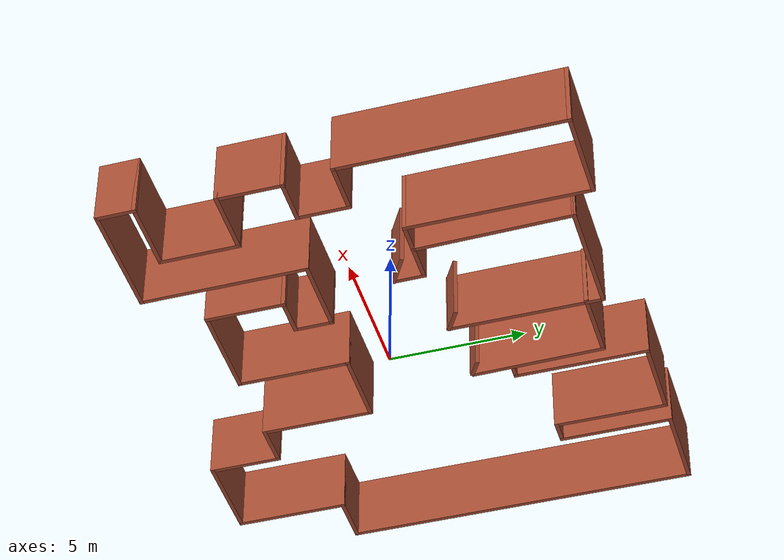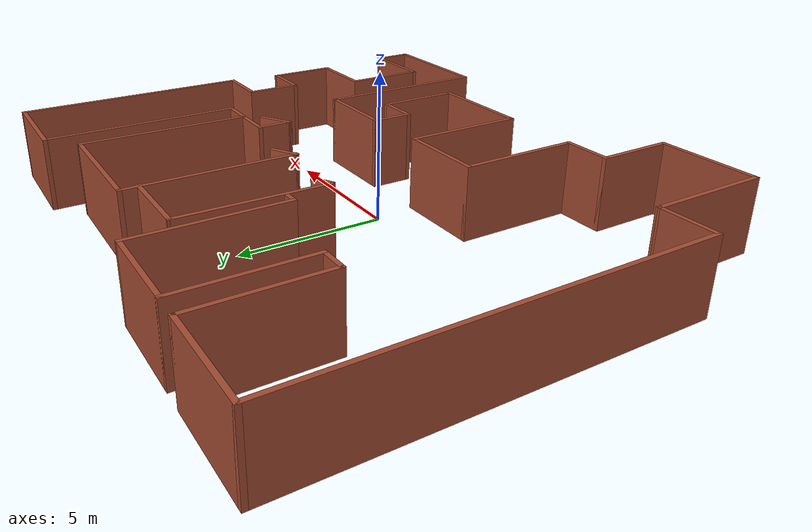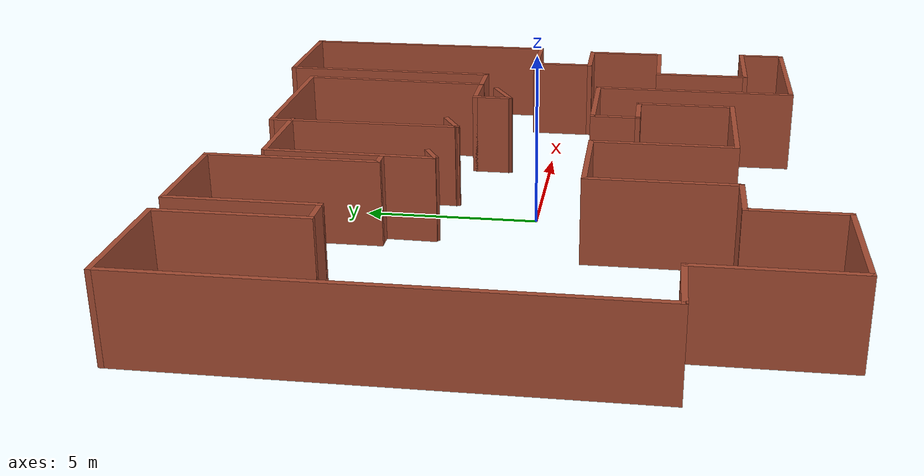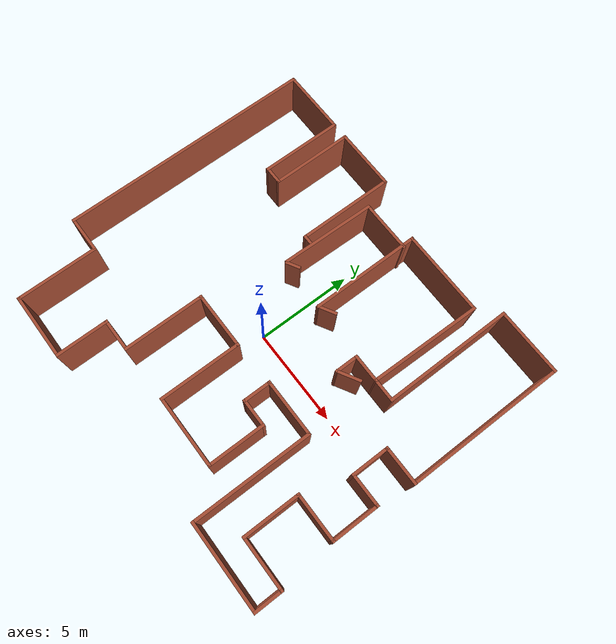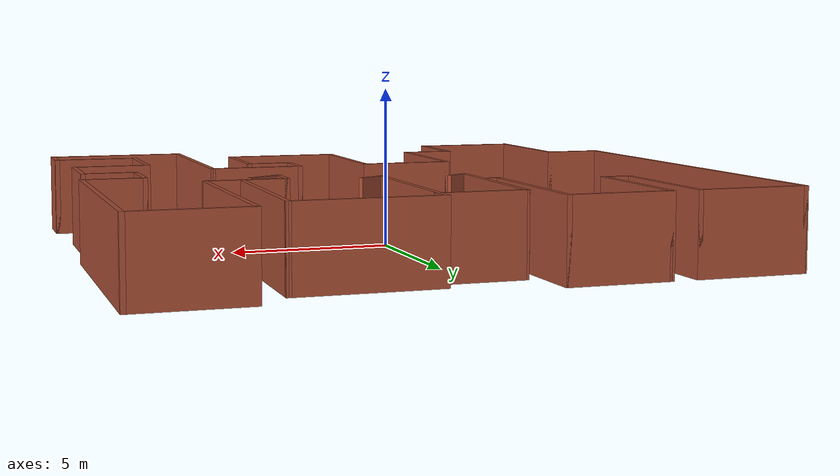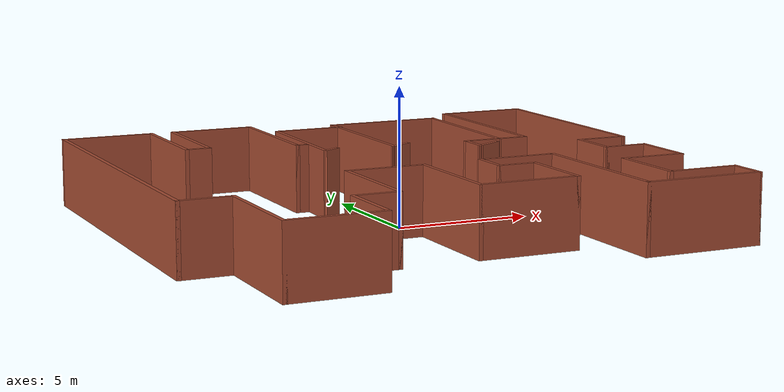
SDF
<?xml version='1.0'?>
<sdf version='1.6'>
  <model name='map_101'>
    <pose frame=''>0.107604 0.371153 0 0 -0 0</pose>
    <link name='Wall_16'>
      <collision name='Wall_16_Collision'>
        <geometry>
          <box>
            <size>13.25 0.15 2.5</size>
          </box>
        </geometry>
        <pose frame=''>0 0 1.25 0 -0 0</pose>
      </collision>
      <visual name='Wall_16_Visual'>
        <pose frame=''>0 0 1.25 0 -0 0</pose>
        <geometry>
          <box>
            <size>13.25 0.15 2.5</size>
          </box>
        </geometry>
        <material>
          <script>
            <uri>file://media/materials/scripts/gazebo.material</uri>
            <name>Gazebo/Bricks</name>
          </script>
          <ambient>1 1 1 1</ambient>
        </material>
        <meta>
          <layer>0</layer>
        </meta>
      </visual>
      <pose frame=''>-9.55 2.05 0 0 -0 -1.5708</pose>
    </link>
    <link name='Wall_17'>
      <collision name='Wall_17_Collision'>
        <geometry>
          <box>
            <size>2 0.15 2.5</size>
          </box>
        </geometry>
        <pose frame=''>0 0 1.25 0 -0 0</pose>
      </collision>
      <visual name='Wall_17_Visual'>
        <pose frame=''>0 0 1.25 0 -0 0</pose>
        <geometry>
          <box>
            <size>2 0.15 2.5</size>
          </box>
        </geometry>
        <material>
          <script>
            <uri>file://media/materials/scripts/gazebo.material</uri>
            <name>Gazebo/Bricks</name>
          </script>
          <ambient>1 1 1 1</ambient>
        </material>
        <meta>
          <layer>0</layer>
        </meta>
      </visual>
      <pose frame=''>-8.625 -4.5 0 0 -0 0</pose>
    </link>
    <link name='Wall_18'>
      <collision name='Wall_18_Collision'>
        <geometry>
          <box>
            <size>4.25 0.15 2.5</size>
          </box>
        </geometry>
        <pose frame=''>0 0 1.25 0 -0 0</pose>
      </collision>
      <visual name='Wall_18_Visual'>
        <pose frame=''>0 0 1.25 0 -0 0</pose>
        <geometry>
          <box>
            <size>4.25 0.15 2.5</size>
          </box>
        </geometry>
        <material>
          <script>
            <uri>file://media/materials/scripts/gazebo.material</uri>
            <name>Gazebo/Bricks</name>
          </script>
          <ambient>1 1 1 1</ambient>
        </material>
        <meta>
          <layer>0</layer>
        </meta>
      </visual>
      <pose frame=''>-7.7 -6.55 0 0 -0 -1.5708</pose>
    </link>
    <link name='Wall_19'>
      <collision name='Wall_19_Collision'>
        <geometry>
          <box>
            <size>3.5 0.15 2.5</size>
          </box>
        </geometry>
        <pose frame=''>0 0 1.25 0 -0 0</pose>
      </collision>
      <visual name='Wall_19_Visual'>
        <pose frame=''>0 0 1.25 0 -0 0</pose>
        <geometry>
          <box>
            <size>3.5 0.15 2.5</size>
          </box>
        </geometry>
        <material>
          <script>
            <uri>file://media/materials/scripts/gazebo.material</uri>
            <name>Gazebo/Bricks</name>
          </script>
          <ambient>1 1 1 1</ambient>
        </material>
        <meta>
          <layer>0</layer>
        </meta>
      </visual>
      <pose frame=''>-6.025 -8.6 0 0 -0 0</pose>
    </link>
    <link name='Wall_20'>
      <collision name='Wall_20_Collision'>
        <geometry>
          <box>
            <size>2.75 0.15 2.5</size>
          </box>
        </geometry>
        <pose frame=''>0 0 1.25 0 -0 0</pose>
      </collision>
      <visual name='Wall_20_Visual'>
        <pose frame=''>0 0 1.25 0 -0 0</pose>
        <geometry>
          <box>
            <size>2.75 0.15 2.5</size>
          </box>
        </geometry>
        <material>
          <script>
            <uri>file://media/materials/scripts/gazebo.material</uri>
            <name>Gazebo/Bricks</name>
          </script>
          <ambient>1 1 1 1</ambient>
        </material>
        <meta>
          <layer>0</layer>
        </meta>
      </visual>
      <pose frame=''>-4.35 -7.3 0 0 -0 1.5708</pose>
    </link>
    <link name='Wall_21'>
      <collision name='Wall_21_Collision'>
        <geometry>
          <box>
            <size>1.75 0.15 2.5</size>
          </box>
        </geometry>
        <pose frame=''>0 0 1.25 0 -0 0</pose>
      </collision>
      <visual name='Wall_21_Visual'>
        <pose frame=''>0 0 1.25 0 -0 0</pose>
        <geometry>
          <box>
            <size>1.75 0.15 2.5</size>
          </box>
        </geometry>
        <material>
          <script>
            <uri>file://media/materials/scripts/gazebo.material</uri>
            <name>Gazebo/Bricks</name>
          </script>
          <ambient>1 1 1 1</ambient>
        </material>
        <meta>
          <layer>0</layer>
        </meta>
      </visual>
      <pose frame=''>-3.55 -6 0 0 -0 0</pose>
    </link>
    <link name='Wall_22'>
      <collision name='Wall_22_Collision'>
        <geometry>
          <box>
            <size>4.25 0.15 2.5</size>
          </box>
        </geometry>
        <pose frame=''>0 0 1.25 0 -0 0</pose>
      </collision>
      <visual name='Wall_22_Visual'>
        <pose frame=''>0 0 1.25 0 -0 0</pose>
        <geometry>
          <box>
            <size>4.25 0.15 2.5</size>
          </box>
        </geometry>
        <material>
          <script>
            <uri>file://media/materials/scripts/gazebo.material</uri>
            <name>Gazebo/Bricks</name>
          </script>
          <ambient>1 1 1 1</ambient>
        </material>
        <meta>
          <layer>0</layer>
        </meta>
      </visual>
      <pose frame=''>-2.75 -3.95 0 0 -0 1.5708</pose>
    </link>
    <link name='Wall_23'>
      <collision name='Wall_23_Collision'>
        <geometry>
          <box>
            <size>3 0.15 2.5</size>
          </box>
        </geometry>
        <pose frame=''>0 0 1.25 0 -0 0</pose>
      </collision>
      <visual name='Wall_23_Visual'>
        <pose frame=''>0 0 1.25 0 -0 0</pose>
        <geometry>
          <box>
            <size>3 0.15 2.5</size>
          </box>
        </geometry>
        <material>
          <script>
            <uri>file://media/materials/scripts/gazebo.material</uri>
            <name>Gazebo/Bricks</name>
          </script>
          <ambient>1 1 1 1</ambient>
        </material>
        <meta>
          <layer>0</layer>
        </meta>
      </visual>
      <pose frame=''>-1.325 -1.9 0 0 -0 0</pose>
    </link>
    <link name='Wall_24'>
      <collision name='Wall_24_Collision'>
        <geometry>
          <box>
            <size>4.25 0.15 2.5</size>
          </box>
        </geometry>
        <pose frame=''>0 0 1.25 0 -0 0</pose>
      </collision>
      <visual name='Wall_24_Visual'>
        <pose frame=''>0 0 1.25 0 -0 0</pose>
        <geometry>
          <box>
            <size>4.25 0.15 2.5</size>
          </box>
        </geometry>
        <material>
          <script>
            <uri>file://media/materials/scripts/gazebo.material</uri>
            <name>Gazebo/Bricks</name>
          </script>
          <ambient>1 1 1 1</ambient>
        </material>
        <meta>
          <layer>0</layer>
        </meta>
      </visual>
      <pose frame=''>0.1 -3.95 0 0 -0 -1.5708</pose>
    </link>
    <link name='Wall_26'>
      <collision name='Wall_26_Collision'>
        <geometry>
          <box>
            <size>3.75 0.15 2.5</size>
          </box>
        </geometry>
        <pose frame=''>0 0 1.25 0 -0 0</pose>
      </collision>
      <visual name='Wall_26_Visual'>
        <pose frame=''>0 0 1.25 0 -0 0</pose>
        <geometry>
          <box>
            <size>3.75 0.15 2.5</size>
          </box>
        </geometry>
        <material>
          <script>
            <uri>file://media/materials/scripts/gazebo.material</uri>
            <name>Gazebo/Bricks</name>
          </script>
          <ambient>1 1 1 1</ambient>
        </material>
        <meta>
          <layer>0</layer>
        </meta>
      </visual>
      <pose frame=''>1.9 -6 0 0 -0 0</pose>
    </link>
    <link name='Wall_27'>
      <collision name='Wall_27_Collision'>
        <geometry>
          <box>
            <size>3 0.15 2.5</size>
          </box>
        </geometry>
        <pose frame=''>0 0 1.25 0 -0 0</pose>
      </collision>
      <visual name='Wall_27_Visual'>
        <pose frame=''>0 0 1.25 0 -0 0</pose>
        <geometry>
          <box>
            <size>3 0.15 2.5</size>
          </box>
        </geometry>
        <material>
          <script>
            <uri>file://media/materials/scripts/gazebo.material</uri>
            <name>Gazebo/Bricks</name>
          </script>
          <ambient>1 1 1 1</ambient>
        </material>
        <meta>
          <layer>0</layer>
        </meta>
      </visual>
      <pose frame=''>3.7 -4.575 0 0 -0 1.5708</pose>
    </link>
    <link name='Wall_28'>
      <collision name='Wall_28_Collision'>
        <geometry>
          <box>
            <size>1.5 0.15 2.5</size>
          </box>
        </geometry>
        <pose frame=''>0 0 1.25 0 -0 0</pose>
      </collision>
      <visual name='Wall_28_Visual'>
        <pose frame=''>0 0 1.25 0 -0 0</pose>
        <geometry>
          <box>
            <size>1.5 0.15 2.5</size>
          </box>
        </geometry>
        <material>
          <script>
            <uri>file://media/materials/scripts/gazebo.material</uri>
            <name>Gazebo/Bricks</name>
          </script>
          <ambient>1 1 1 1</ambient>
        </material>
        <meta>
          <layer>0</layer>
        </meta>
      </visual>
      <pose frame=''>3.025 -3.15 0 0 -0 3.14159</pose>
    </link>
    <link name='Wall_29'>
      <collision name='Wall_29_Collision'>
        <geometry>
          <box>
            <size>1.5 0.15 2.5</size>
          </box>
        </geometry>
        <pose frame=''>0 0 1.25 0 -0 0</pose>
      </collision>
      <visual name='Wall_29_Visual'>
        <pose frame=''>0 0 1.25 0 -0 0</pose>
        <geometry>
          <box>
            <size>1.5 0.15 2.5</size>
          </box>
        </geometry>
        <material>
          <script>
            <uri>file://media/materials/scripts/gazebo.material</uri>
            <name>Gazebo/Bricks</name>
          </script>
          <ambient>1 1 1 1</ambient>
        </material>
        <meta>
          <layer>0</layer>
        </meta>
      </visual>
      <pose frame=''>2.35 -2.475 0 0 -0 1.5708</pose>
    </link>
    <link name='Wall_30'>
      <collision name='Wall_30_Collision'>
        <geometry>
          <box>
            <size>3 0.15 2.5</size>
          </box>
        </geometry>
        <pose frame=''>0 0 1.25 0 -0 0</pose>
      </collision>
      <visual name='Wall_30_Visual'>
        <pose frame=''>0 0 1.25 0 -0 0</pose>
        <geometry>
          <box>
            <size>3 0.15 2.5</size>
          </box>
        </geometry>
        <material>
          <script>
            <uri>file://media/materials/scripts/gazebo.material</uri>
            <name>Gazebo/Bricks</name>
          </script>
          <ambient>1 1 1 1</ambient>
        </material>
        <meta>
          <layer>0</layer>
        </meta>
      </visual>
      <pose frame=''>3.775 -1.8 0 0 -0 0</pose>
    </link>
    <link name='Wall_31'>
      <collision name='Wall_31_Collision'>
        <geometry>
          <box>
            <size>6.25 0.15 2.5</size>
          </box>
        </geometry>
        <pose frame=''>0 0 1.25 0 -0 0</pose>
      </collision>
      <visual name='Wall_31_Visual'>
        <pose frame=''>0 0 1.25 0 -0 0</pose>
        <geometry>
          <box>
            <size>6.25 0.15 2.5</size>
          </box>
        </geometry>
        <material>
          <script>
            <uri>file://media/materials/scripts/gazebo.material</uri>
            <name>Gazebo/Bricks</name>
          </script>
          <ambient>1 1 1 1</ambient>
        </material>
        <meta>
          <layer>0</layer>
        </meta>
      </visual>
      <pose frame=''>5.2 -4.85 0 0 -0 -1.5708</pose>
    </link>
    <link name='Wall_32'>
      <collision name='Wall_32_Collision'>
        <geometry>
          <box>
            <size>4.5 0.15 2.5</size>
          </box>
        </geometry>
        <pose frame=''>0 0 1.25 0 -0 0</pose>
      </collision>
      <visual name='Wall_32_Visual'>
        <pose frame=''>0 0 1.25 0 -0 0</pose>
        <geometry>
          <box>
            <size>4.5 0.15 2.5</size>
          </box>
        </geometry>
        <material>
          <script>
            <uri>file://media/materials/scripts/gazebo.material</uri>
            <name>Gazebo/Bricks</name>
          </script>
          <ambient>1 1 1 1</ambient>
        </material>
        <meta>
          <layer>0</layer>
        </meta>
      </visual>
      <pose frame=''>7.375 -7.9 0 0 -0 0</pose>
    </link>
    <link name='Wall_33'>
      <collision name='Wall_33_Collision'>
        <geometry>
          <box>
            <size>1.5 0.15 2.5</size>
          </box>
        </geometry>
        <pose frame=''>0 0 1.25 0 -0 0</pose>
      </collision>
      <visual name='Wall_33_Visual'>
        <pose frame=''>0 0 1.25 0 -0 0</pose>
        <geometry>
          <box>
            <size>1.5 0.15 2.5</size>
          </box>
        </geometry>
        <material>
          <script>
            <uri>file://media/materials/scripts/gazebo.material</uri>
            <name>Gazebo/Bricks</name>
          </script>
          <ambient>1 1 1 1</ambient>
        </material>
        <meta>
          <layer>0</layer>
        </meta>
      </visual>
      <pose frame=''>9.55 -7.225 0 0 -0 1.5708</pose>
    </link>
    <link name='Wall_34'>
      <collision name='Wall_34_Collision'>
        <geometry>
          <box>
            <size>2.75 0.15 2.5</size>
          </box>
        </geometry>
        <pose frame=''>0 0 1.25 0 -0 0</pose>
      </collision>
      <visual name='Wall_34_Visual'>
        <pose frame=''>0 0 1.25 0 -0 0</pose>
        <geometry>
          <box>
            <size>2.75 0.15 2.5</size>
          </box>
        </geometry>
        <material>
          <script>
            <uri>file://media/materials/scripts/gazebo.material</uri>
            <name>Gazebo/Bricks</name>
          </script>
          <ambient>1 1 1 1</ambient>
        </material>
        <meta>
          <layer>0</layer>
        </meta>
      </visual>
      <pose frame=''>8.25 -6.55 0 0 -0 3.14159</pose>
    </link>
    <link name='Wall_35'>
      <collision name='Wall_35_Collision'>
        <geometry>
          <box>
            <size>3 0.15 2.5</size>
          </box>
        </geometry>
        <pose frame=''>0 0 1.25 0 -0 0</pose>
      </collision>
      <visual name='Wall_35_Visual'>
        <pose frame=''>0 0 1.25 0 -0 0</pose>
        <geometry>
          <box>
            <size>3 0.15 2.5</size>
          </box>
        </geometry>
        <material>
          <script>
            <uri>file://media/materials/scripts/gazebo.material</uri>
            <name>Gazebo/Bricks</name>
          </script>
          <ambient>1 1 1 1</ambient>
        </material>
        <meta>
          <layer>0</layer>
        </meta>
      </visual>
      <pose frame=''>6.95 -5.125 0 0 -0 1.5708</pose>
    </link>
    <link name='Wall_36'>
      <collision name='Wall_36_Collision'>
        <geometry>
          <box>
            <size>2.5 0.15 2.5</size>
          </box>
        </geometry>
        <pose frame=''>0 0 1.25 0 -0 0</pose>
      </collision>
      <visual name='Wall_36_Visual'>
        <pose frame=''>0 0 1.25 0 -0 0</pose>
        <geometry>
          <box>
            <size>2.5 0.15 2.5</size>
          </box>
        </geometry>
        <material>
          <script>
            <uri>file://media/materials/scripts/gazebo.material</uri>
            <name>Gazebo/Bricks</name>
          </script>
          <ambient>1 1 1 1</ambient>
        </material>
        <meta>
          <layer>0</layer>
        </meta>
      </visual>
      <pose frame=''>8.125 -3.7 0 0 -0 0</pose>
    </link>
    <link name='Wall_37'>
      <collision name='Wall_37_Collision'>
        <geometry>
          <box>
            <size>2.5 0.15 2.5</size>
          </box>
        </geometry>
        <pose frame=''>0 0 1.25 0 -0 0</pose>
      </collision>
      <visual name='Wall_37_Visual'>
        <pose frame=''>0 0 1.25 0 -0 0</pose>
        <geometry>
          <box>
            <size>2.5 0.15 2.5</size>
          </box>
        </geometry>
        <material>
          <script>
            <uri>file://media/materials/scripts/gazebo.material</uri>
            <name>Gazebo/Bricks</name>
          </script>
          <ambient>1 1 1 1</ambient>
        </material>
        <meta>
          <layer>0</layer>
        </meta>
      </visual>
      <pose frame=''>9.3 -2.525 0 0 -0 1.5708</pose>
    </link>
    <link name='Wall_38'>
      <collision name='Wall_38_Collision'>
        <geometry>
          <box>
            <size>1.75 0.15 2.5</size>
          </box>
        </geometry>
        <pose frame=''>0 0 1.25 0 -0 0</pose>
      </collision>
      <visual name='Wall_38_Visual'>
        <pose frame=''>0 0 1.25 0 -0 0</pose>
        <geometry>
          <box>
            <size>1.75 0.15 2.5</size>
          </box>
        </geometry>
        <material>
          <script>
            <uri>file://media/materials/scripts/gazebo.material</uri>
            <name>Gazebo/Bricks</name>
          </script>
          <ambient>1 1 1 1</ambient>
        </material>
        <meta>
          <layer>0</layer>
        </meta>
      </visual>
      <pose frame=''>8.5 -1.35 0 0 -0 3.14159</pose>
    </link>
    <link name='Wall_39'>
      <collision name='Wall_39_Collision'>
        <geometry>
          <box>
            <size>2 0.15 2.5</size>
          </box>
        </geometry>
        <pose frame=''>0 0 1.25 0 -0 0</pose>
      </collision>
      <visual name='Wall_39_Visual'>
        <pose frame=''>0 0 1.25 0 -0 0</pose>
        <geometry>
          <box>
            <size>2 0.15 2.5</size>
          </box>
        </geometry>
        <material>
          <script>
            <uri>file://media/materials/scripts/gazebo.material</uri>
            <name>Gazebo/Bricks</name>
          </script>
          <ambient>1 1 1 1</ambient>
        </material>
        <meta>
          <layer>0</layer>
        </meta>
      </visual>
      <pose frame=''>7.7 -0.425 0 0 -0 1.5708</pose>
    </link>
    <link name='Wall_40'>
      <collision name='Wall_40_Collision'>
        <geometry>
          <box>
            <size>2 0.15 2.5</size>
          </box>
        </geometry>
        <pose frame=''>0 0 1.25 0 -0 0</pose>
      </collision>
      <visual name='Wall_40_Visual'>
        <pose frame=''>0 0 1.25 0 -0 0</pose>
        <geometry>
          <box>
            <size>2 0.15 2.5</size>
          </box>
        </geometry>
        <material>
          <script>
            <uri>file://media/materials/scripts/gazebo.material</uri>
            <name>Gazebo/Bricks</name>
          </script>
          <ambient>1 1 1 1</ambient>
        </material>
        <meta>
          <layer>0</layer>
        </meta>
      </visual>
      <pose frame=''>8.625 0.5 0 0 -0 0</pose>
    </link>
    <link name='Wall_41'>
      <collision name='Wall_41_Collision'>
        <geometry>
          <box>
            <size>8.25 0.15 2.5</size>
          </box>
        </geometry>
        <pose frame=''>0 0 1.25 0 -0 0</pose>
      </collision>
      <visual name='Wall_41_Visual'>
        <pose frame=''>0 0 1.25 0 -0 0</pose>
        <geometry>
          <box>
            <size>8.25 0.15 2.5</size>
          </box>
        </geometry>
        <material>
          <script>
            <uri>file://media/materials/scripts/gazebo.material</uri>
            <name>Gazebo/Bricks</name>
          </script>
          <ambient>1 1 1 1</ambient>
        </material>
        <meta>
          <layer>0</layer>
        </meta>
      </visual>
      <pose frame=''>9.55 4.55 0 0 -0 1.5708</pose>
    </link>
    <link name='Wall_61'>
      <collision name='Wall_61_Collision'>
        <geometry>
          <box>
            <size>4.5 0.15 2.5</size>
          </box>
        </geometry>
        <pose frame=''>0 0 1.25 0 -0 0</pose>
      </collision>
      <visual name='Wall_61_Visual'>
        <pose frame=''>0 0 1.25 0 -0 0</pose>
        <geometry>
          <box>
            <size>4.5 0.15 2.5</size>
          </box>
        </geometry>
        <material>
          <script>
            <uri>file://media/materials/scripts/gazebo.material</uri>
            <name>Gazebo/Bricks</name>
          </script>
          <ambient>1 1 1 1</ambient>
        </material>
        <meta>
          <layer>0</layer>
        </meta>
      </visual>
      <pose frame=''>3.025 7.7 0 0 -0 3.14159</pose>
    </link>
    <link name='Wall_62'>
      <collision name='Wall_62_Collision'>
        <geometry>
          <box>
            <size>5.75 0.15 2.5</size>
          </box>
        </geometry>
        <pose frame=''>0 0 1.25 0 -0 0</pose>
      </collision>
      <visual name='Wall_62_Visual'>
        <pose frame=''>0 0 1.25 0 -0 0</pose>
        <geometry>
          <box>
            <size>5.75 0.15 2.5</size>
          </box>
        </geometry>
        <material>
          <script>
            <uri>file://media/materials/scripts/gazebo.material</uri>
            <name>Gazebo/Bricks</name>
          </script>
          <ambient>1 1 1 1</ambient>
        </material>
        <meta>
          <layer>0</layer>
        </meta>
      </visual>
      <pose frame=''>0.85 4.9 0 0 -0 -1.5708</pose>
    </link>
    <link name='Wall_63'>
      <collision name='Wall_63_Collision'>
        <geometry>
          <box>
            <size>1 0.15 2.5</size>
          </box>
        </geometry>
        <pose frame=''>0 0 1.25 0 -0 0</pose>
      </collision>
      <visual name='Wall_63_Visual'>
        <pose frame=''>0 0 1.25 0 -0 0</pose>
        <geometry>
          <box>
            <size>1 0.15 2.5</size>
          </box>
        </geometry>
        <material>
          <script>
            <uri>file://media/materials/scripts/gazebo.material</uri>
            <name>Gazebo/Bricks</name>
          </script>
          <ambient>1 1 1 1</ambient>
        </material>
        <meta>
          <layer>0</layer>
        </meta>
      </visual>
      <pose frame=''>1.21806 2.3125 0 0 -0 0.523599</pose>
    </link>
    <link name='Wall_67'>
      <collision name='Wall_67_Collision'>
        <geometry>
          <box>
            <size>2.75 0.15 2.5</size>
          </box>
        </geometry>
        <pose frame=''>0 0 1.25 0 -0 0</pose>
      </collision>
      <visual name='Wall_67_Visual'>
        <pose frame=''>0 0 1.25 0 -0 0</pose>
        <geometry>
          <box>
            <size>2.75 0.15 2.5</size>
          </box>
        </geometry>
        <material>
          <script>
            <uri>file://media/materials/scripts/gazebo.material</uri>
            <name>Gazebo/Bricks</name>
          </script>
          <ambient>1 1 1 1</ambient>
        </material>
        <meta>
          <layer>0</layer>
        </meta>
      </visual>
      <pose frame=''>-0.382119 7.11123 0 0 -0 3.14159</pose>
    </link>
    <link name='Wall_68'>
      <collision name='Wall_68_Collision'>
        <geometry>
          <box>
            <size>4.95438 0.15 2.5</size>
          </box>
        </geometry>
        <pose frame=''>0 0 1.25 0 -0 0</pose>
      </collision>
      <visual name='Wall_68_Visual'>
        <pose frame=''>0 0 1.25 0 -0 0</pose>
        <geometry>
          <box>
            <size>4.95438 0.15 2.5</size>
          </box>
        </geometry>
        <material>
          <script>
            <uri>file://media/materials/scripts/gazebo.material</uri>
            <name>Gazebo/Bricks</name>
          </script>
          <ambient>1 1 1 1</ambient>
        </material>
        <meta>
          <layer>0</layer>
        </meta>
      </visual>
      <pose frame=''>-1.72864 4.7095 0 0 -0 -1.59017</pose>
    </link>
    <link name='Wall_69'>
      <collision name='Wall_69_Collision'>
        <geometry>
          <box>
            <size>0.75 0.15 2.5</size>
          </box>
        </geometry>
        <pose frame=''>0 0 1.25 0 -0 0</pose>
      </collision>
      <visual name='Wall_69_Visual'>
        <pose frame=''>0 0 1.25 0 -0 0</pose>
        <geometry>
          <box>
            <size>0.75 0.15 2.5</size>
          </box>
        </geometry>
        <material>
          <script>
            <uri>file://media/materials/scripts/gazebo.material</uri>
            <name>Gazebo/Bricks</name>
          </script>
          <ambient>1 1 1 1</ambient>
        </material>
        <meta>
          <layer>0</layer>
        </meta>
      </visual>
      <pose frame=''>-1.46883 2.41123 0 0 -0 0.523599</pose>
    </link>
    <link name='Wall_71'>
      <collision name='Wall_71_Collision'>
        <geometry>
          <box>
            <size>3.5 0.15 2.5</size>
          </box>
        </geometry>
        <pose frame=''>0 0 1.25 0 -0 0</pose>
      </collision>
      <visual name='Wall_71_Visual'>
        <pose frame=''>0 0 1.25 0 -0 0</pose>
        <geometry>
          <box>
            <size>3.5 0.15 2.5</size>
          </box>
        </geometry>
        <material>
          <script>
            <uri>file://media/materials/scripts/gazebo.material</uri>
            <name>Gazebo/Bricks</name>
          </script>
          <ambient>1 1 1 1</ambient>
        </material>
        <meta>
          <layer>0</layer>
        </meta>
      </visual>
      <pose frame=''>-7.875 8.6 0 0 -0 0</pose>
    </link>
    <link name='Wall_72'>
      <collision name='Wall_72_Collision'>
        <geometry>
          <box>
            <size>4.25 0.15 2.5</size>
          </box>
        </geometry>
        <pose frame=''>0 0 1.25 0 -0 0</pose>
      </collision>
      <visual name='Wall_72_Visual'>
        <pose frame=''>0 0 1.25 0 -0 0</pose>
        <geometry>
          <box>
            <size>4.25 0.15 2.5</size>
          </box>
        </geometry>
        <material>
          <script>
            <uri>file://media/materials/scripts/gazebo.material</uri>
            <name>Gazebo/Bricks</name>
          </script>
          <ambient>1 1 1 1</ambient>
        </material>
        <meta>
          <layer>0</layer>
        </meta>
      </visual>
      <pose frame=''>-6.2 6.55 0 0 -0 -1.5708</pose>
    </link>
    <link name='Wall_73'>
      <collision name='Wall_73_Collision'>
        <geometry>
          <box>
            <size>1 0.15 2.5</size>
          </box>
        </geometry>
        <pose frame=''>0 0 1.25 0 -0 0</pose>
      </collision>
      <visual name='Wall_73_Visual'>
        <pose frame=''>0 0 1.25 0 -0 0</pose>
        <geometry>
          <box>
            <size>1 0.15 2.5</size>
          </box>
        </geometry>
        <material>
          <script>
            <uri>file://media/materials/scripts/gazebo.material</uri>
            <name>Gazebo/Bricks</name>
          </script>
          <ambient>1 1 1 1</ambient>
        </material>
        <meta>
          <layer>0</layer>
        </meta>
      </visual>
      <pose frame=''>-5.775 4.5 0 0 -0 0</pose>
    </link>
    <link name='Wall_74'>
      <collision name='Wall_74_Collision'>
        <geometry>
          <box>
            <size>4.25 0.15 2.5</size>
          </box>
        </geometry>
        <pose frame=''>0 0 1.25 0 -0 0</pose>
      </collision>
      <visual name='Wall_74_Visual'>
        <pose frame=''>0 0 1.25 0 -0 0</pose>
        <geometry>
          <box>
            <size>4.25 0.15 2.5</size>
          </box>
        </geometry>
        <material>
          <script>
            <uri>file://media/materials/scripts/gazebo.material</uri>
            <name>Gazebo/Bricks</name>
          </script>
          <ambient>1 1 1 1</ambient>
        </material>
        <meta>
          <layer>0</layer>
        </meta>
      </visual>
      <pose frame=''>-5.35 6.55 0 0 -0 1.5708</pose>
    </link>
    <link name='Wall_75'>
      <collision name='Wall_75_Collision'>
        <geometry>
          <box>
            <size>3.25 0.15 2.5</size>
          </box>
        </geometry>
        <pose frame=''>0 0 1.25 0 -0 0</pose>
      </collision>
      <visual name='Wall_75_Visual'>
        <pose frame=''>0 0 1.25 0 -0 0</pose>
        <geometry>
          <box>
            <size>3.25 0.15 2.5</size>
          </box>
        </geometry>
        <material>
          <script>
            <uri>file://media/materials/scripts/gazebo.material</uri>
            <name>Gazebo/Bricks</name>
          </script>
          <ambient>1 1 1 1</ambient>
        </material>
        <meta>
          <layer>0</layer>
        </meta>
      </visual>
      <pose frame=''>-3.8 8.6 0 0 -0 0</pose>
    </link>
    <link name='Wall_76'>
      <collision name='Wall_76_Collision'>
        <geometry>
          <box>
            <size>5 0.15 2.5</size>
          </box>
        </geometry>
        <pose frame=''>0 0 1.25 0 -0 0</pose>
      </collision>
      <visual name='Wall_76_Visual'>
        <pose frame=''>0 0 1.25 0 -0 0</pose>
        <geometry>
          <box>
            <size>5 0.15 2.5</size>
          </box>
        </geometry>
        <material>
          <script>
            <uri>file://media/materials/scripts/gazebo.material</uri>
            <name>Gazebo/Bricks</name>
          </script>
          <ambient>1 1 1 1</ambient>
        </material>
        <meta>
          <layer>0</layer>
        </meta>
      </visual>
      <pose frame=''>-2.25 6.175 0 0 -0 -1.5708</pose>
    </link>
    <link name='Wall_79'>
      <collision name='Wall_79_Collision'>
        <geometry>
          <box>
            <size>3.5 0.15 2.5</size>
          </box>
        </geometry>
        <pose frame=''>0 0 1.25 0 -0 0</pose>
      </collision>
      <visual name='Wall_79_Visual'>
        <pose frame=''>0 0 1.25 0 -0 0</pose>
        <geometry>
          <box>
            <size>3.5 0.15 2.5</size>
          </box>
        </geometry>
        <material>
          <script>
            <uri>file://media/materials/scripts/gazebo.material</uri>
            <name>Gazebo/Bricks</name>
          </script>
          <ambient>1 1 1 1</ambient>
        </material>
        <meta>
          <layer>0</layer>
        </meta>
      </visual>
      <pose frame=''>7.875 8.6 0 0 -0 3.14159</pose>
    </link>
    <link name='Wall_80'>
      <collision name='Wall_80_Collision'>
        <geometry>
          <box>
            <size>6.75 0.15 2.5</size>
          </box>
        </geometry>
        <pose frame=''>0 0 1.25 0 -0 0</pose>
      </collision>
      <visual name='Wall_80_Visual'>
        <pose frame=''>0 0 1.25 0 -0 0</pose>
        <geometry>
          <box>
            <size>6.75 0.15 2.5</size>
          </box>
        </geometry>
        <material>
          <script>
            <uri>file://media/materials/scripts/gazebo.material</uri>
            <name>Gazebo/Bricks</name>
          </script>
          <ambient>1 1 1 1</ambient>
        </material>
        <meta>
          <layer>0</layer>
        </meta>
      </visual>
      <pose frame=''>6.2 5.3 0 0 -0 -1.5708</pose>
    </link>
    <link name='Wall_83'>
      <collision name='Wall_83_Collision'>
        <geometry>
          <box>
            <size>1.25 0.15 2.5</size>
          </box>
        </geometry>
        <pose frame=''>0 0 1.25 0 -0 0</pose>
      </collision>
      <visual name='Wall_83_Visual'>
        <pose frame=''>0 0 1.25 0 -0 0</pose>
        <geometry>
          <box>
            <size>1.25 0.15 2.5</size>
          </box>
        </geometry>
        <material>
          <script>
            <uri>file://media/materials/scripts/gazebo.material</uri>
            <name>Gazebo/Bricks</name>
          </script>
          <ambient>1 1 1 1</ambient>
        </material>
        <meta>
          <layer>0</layer>
        </meta>
      </visual>
      <pose frame=''>5.65 2 0 0 -0 3.14159</pose>
    </link>
    <link name='Wall_84'>
      <collision name='Wall_84_Collision'>
        <geometry>
          <box>
            <size>5.85088 0.15 2.5</size>
          </box>
        </geometry>
        <pose frame=''>0 0 1.25 0 -0 0</pose>
      </collision>
      <visual name='Wall_84_Visual'>
        <pose frame=''>0 0 1.25 0 -0 0</pose>
        <geometry>
          <box>
            <size>5.85088 0.15 2.5</size>
          </box>
        </geometry>
        <material>
          <script>
            <uri>file://media/materials/scripts/gazebo.material</uri>
            <name>Gazebo/Bricks</name>
          </script>
          <ambient>1 1 1 1</ambient>
        </material>
        <meta>
          <layer>0</layer>
        </meta>
      </visual>
      <pose frame=''>5.15 4.85 0 0 -0 1.55325</pose>
    </link>
    <link name='Wall_86'>
      <collision name='Wall_86_Collision'>
        <geometry>
          <box>
            <size>1.5 0.15 2.5</size>
          </box>
        </geometry>
        <pose frame=''>0 0 1.25 0 -0 0</pose>
      </collision>
      <visual name='Wall_86_Visual'>
        <pose frame=''>0 0 1.25 0 -0 0</pose>
        <geometry>
          <box>
            <size>1.5 0.15 2.5</size>
          </box>
        </geometry>
        <material>
          <script>
            <uri>file://media/materials/scripts/gazebo.material</uri>
            <name>Gazebo/Bricks</name>
          </script>
          <ambient>1 1 1 1</ambient>
        </material>
        <meta>
          <layer>0</layer>
        </meta>
      </visual>
      <pose frame=''>4.425 2 0 0 -0 3.14159</pose>
    </link>
    <link name='Wall_92'>
      <collision name='Wall_92_Collision'>
        <geometry>
          <box>
            <size>1.25 0.15 2.5</size>
          </box>
        </geometry>
        <pose frame=''>0 0 1.25 0 -0 0</pose>
      </collision>
      <visual name='Wall_92_Visual'>
        <pose frame=''>0 0 1.25 0 -0 0</pose>
        <geometry>
          <box>
            <size>1.25 0.15 2.5</size>
          </box>
        </geometry>
        <material>
          <script>
            <uri>file://media/materials/scripts/gazebo.material</uri>
            <name>Gazebo/Bricks</name>
          </script>
          <ambient>1 1 1 1</ambient>
        </material>
        <meta>
          <layer>0</layer>
        </meta>
      </visual>
      <pose frame=''>3.75 1.45 0 0 -0 -1.5708</pose>
    </link>
    <link name='Wall_93'>
      <collision name='Wall_93_Collision'>
        <geometry>
          <box>
            <size>1.25 0.15 2.5</size>
          </box>
        </geometry>
        <pose frame=''>0 0 1.25 0 -0 0</pose>
      </collision>
      <visual name='Wall_93_Visual'>
        <pose frame=''>0 0 1.25 0 -0 0</pose>
        <geometry>
          <box>
            <size>1.25 0.15 2.5</size>
          </box>
        </geometry>
        <material>
          <script>
            <uri>file://media/materials/scripts/gazebo.material</uri>
            <name>Gazebo/Bricks</name>
          </script>
          <ambient>1 1 1 1</ambient>
        </material>
        <meta>
          <layer>0</layer>
        </meta>
      </visual>
      <pose frame=''>4.22631 1.175 0 0 -0 0.523599</pose>
    </link>
    <link name='Wall_95'>
      <collision name='Wall_95_Collision'>
        <geometry>
          <box>
            <size>0.5 0.15 2.5</size>
          </box>
        </geometry>
        <pose frame=''>0 0 1.25 0 -0 0</pose>
      </collision>
      <visual name='Wall_95_Visual'>
        <pose frame=''>0 0 1.25 0 -0 0</pose>
        <geometry>
          <box>
            <size>0.5 0.15 2.5</size>
          </box>
        </geometry>
        <material>
          <script>
            <uri>file://media/materials/scripts/gazebo.material</uri>
            <name>Gazebo/Bricks</name>
          </script>
          <ambient>1 1 1 1</ambient>
        </material>
        <meta>
          <layer>0</layer>
        </meta>
      </visual>
      <pose frame=''>-2.075 3.75 0 0 -0 0</pose>
    </link>
    <static>1</static>
  </model>
</sdf>
